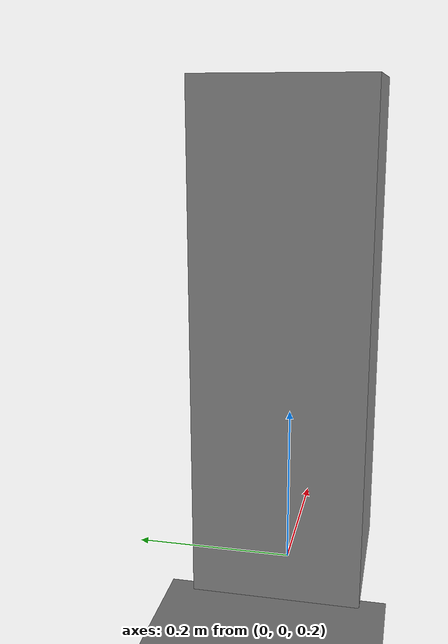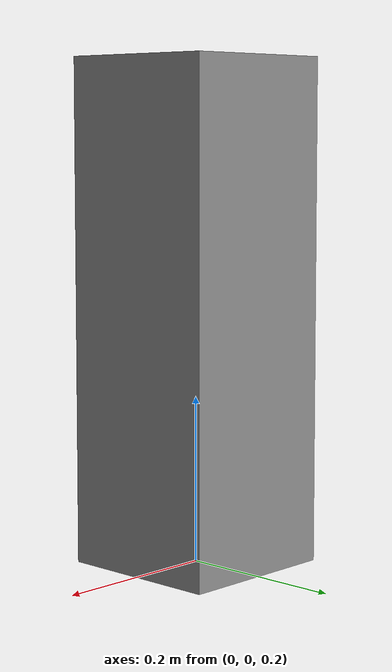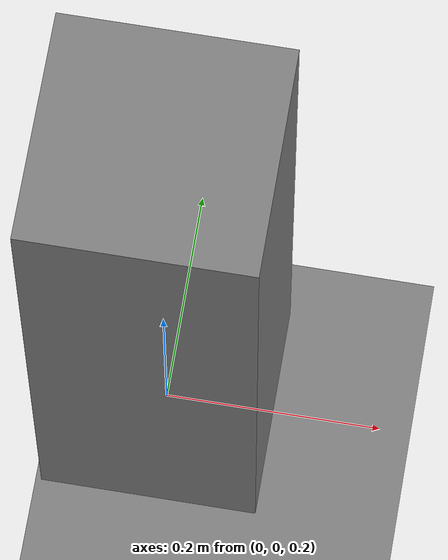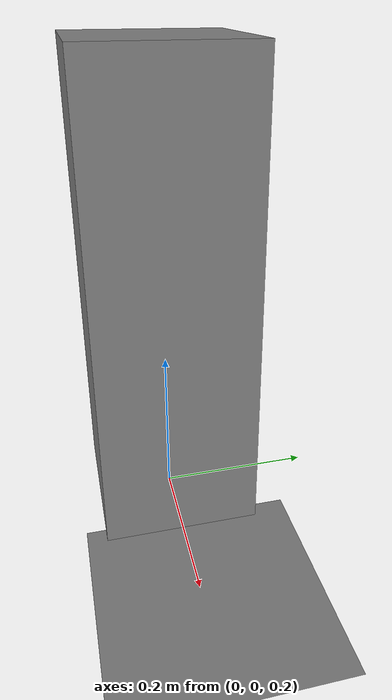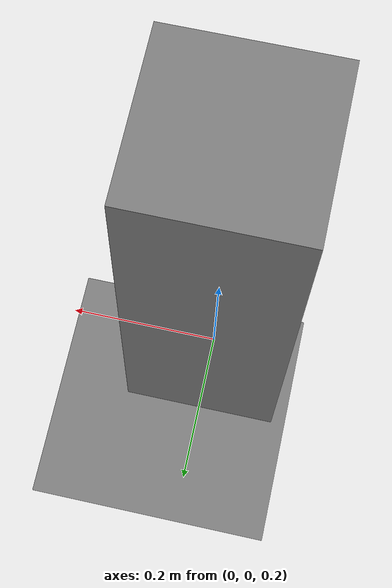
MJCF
<?xml version="1.0" ?>
<mujoco model="simple_test">
    <option timestep="0.001" gravity="0 0 -9.81"/>
    <default>
        <geom friction="1"/>
    </default>
    <worldbody>
        <geom type="plane" size="1 1 0.1"/>
        <body pos="0 0 0.5">
            <joint name="hinge1" type="hinge" axis="0 1 0"/>
            <geom type="box" size="0.1 0.1 0.3" mass="1"/>
        </body>
    </worldbody>
    <actuator>
        <motor name="motor1" joint="hinge1" gear="1" ctrlrange="-1 1"/>
    </actuator>
</mujoco>
